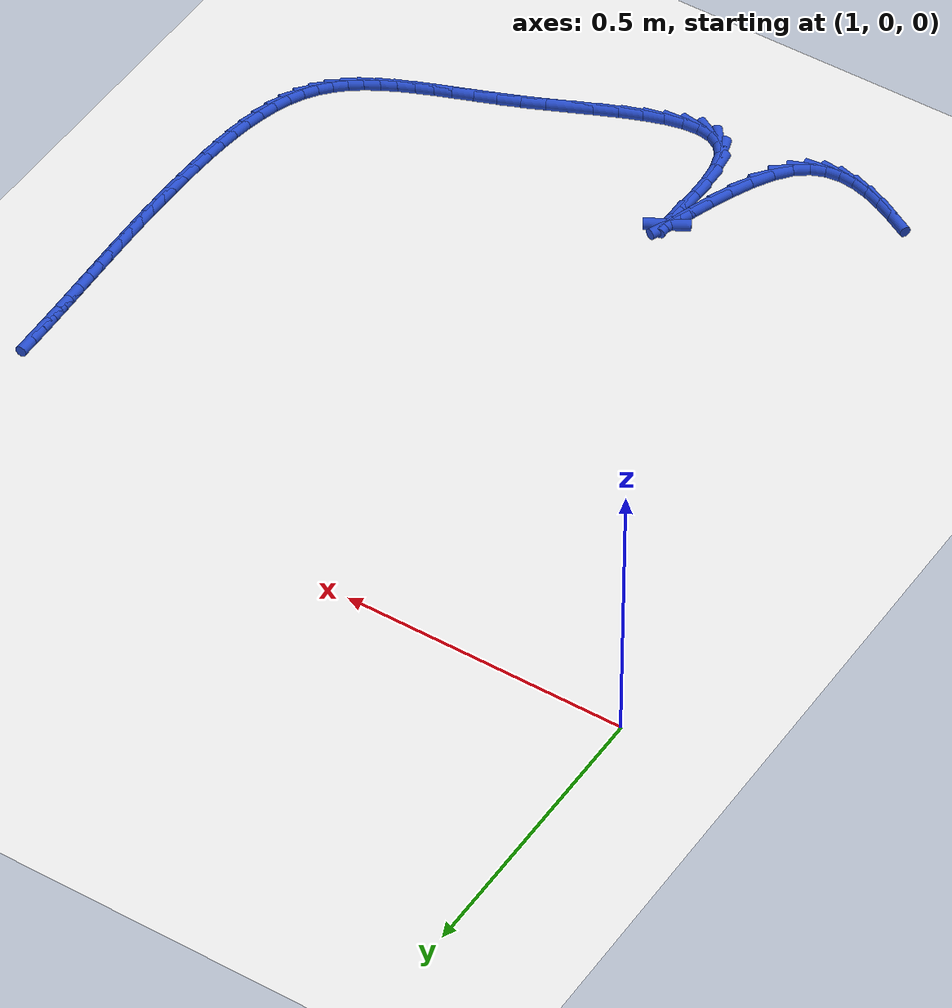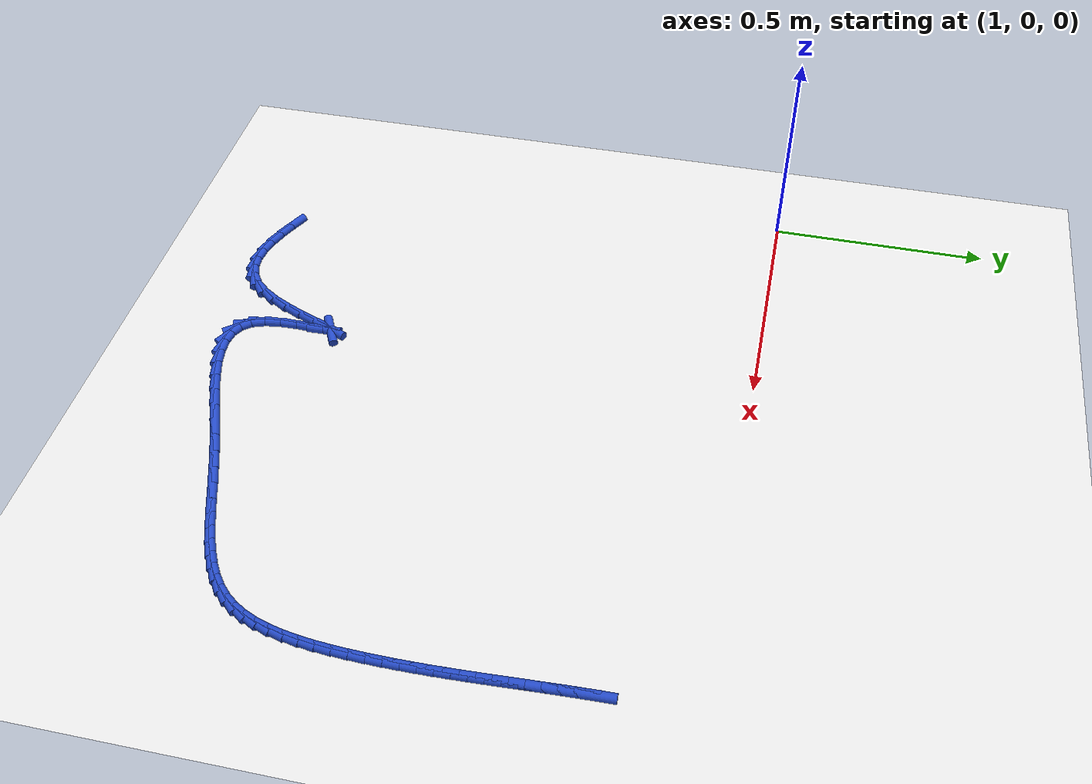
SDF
<sdf version="1.6">
 <world name="default">
  <model name="ground_plane">
   <static>1</static>
   <link name="link">
    <collision name="collision">
     <geometry><plane><normal>0 0 1</normal><size>100 100</size></plane></geometry>
     <surface><friction><ode><mu>100</mu><mu2>50</mu2></ode></friction></surface>
    </collision>
    <visual name="visual">
     <cast_shadows>0</cast_shadows>
     <geometry><plane><normal>0 0 1</normal><size>100 100</size></plane></geometry>
     <material>
      <script><uri>file://media/materials/scripts/gazebo.material</uri><name>Gazebo/WhiteGlow</name></script>
     </material>
    </visual>
   </link>
  </model>
  <model name="line">
   <link name="link_140">
    <pose>2.239795760640296 -0.19969387549302162 0.01 0 1.57 -1.5423619215341857</pose>
    <collision name="collision">
     <geometry><cylinder><radius>0.01</radius><length>0.08</length></cylinder></geometry>
    </collision>
    <visual name="visual">
     <material>
      <script><name>Gazebo/Blue</name><uri>file://media/materials/scripts/gazebo.material</uri></script>
     </material>
     <geometry><cylinder><radius>0.01</radius><length>0.08</length></cylinder></geometry>
    </visual>
   </link>
   <link name="link_141">
    <pose>2.240646824293116 -0.22961657887403833 0.01 0 1.57 -1.5354511075361896</pose>
    <collision name="collision">
     <geometry><cylinder><radius>0.01</radius><length>0.08</length></cylinder></geometry>
    </collision>
    <visual name="visual">
     <material>
      <script><name>Gazebo/Blue</name><uri>file://media/materials/scripts/gazebo.material</uri></script>
     </material>
     <geometry><cylinder><radius>0.01</radius><length>0.08</length></cylinder></geometry>
    </visual>
   </link>
   <link name="link_142">
    <pose>2.2417099219779604 -0.25968160510467597 0.01 0 1.57 -1.530387479086534</pose>
    <collision name="collision">
     <geometry><cylinder><radius>0.01</radius><length>0.08</length></cylinder></geometry>
    </collision>
    <visual name="visual">
     <material>
      <script><name>Gazebo/Blue</name><uri>file://media/materials/scripts/gazebo.material</uri></script>
     </material>
     <geometry><cylinder><radius>0.01</radius><length>0.08</length></cylinder></geometry>
    </visual>
   </link>
   <link name="link_143">
    <pose>2.2429318873362334 -0.2899051885417312 0.01 0 1.57 -1.527148485805397</pose>
    <collision name="collision">
     <geometry><cylinder><radius>0.01</radius><length>0.08</length></cylinder></geometry>
    </collision>
    <visual name="visual">
     <material>
      <script><name>Gazebo/Blue</name><uri>file://media/materials/scripts/gazebo.material</uri></script>
     </material>
     <geometry><cylinder><radius>0.01</radius><length>0.08</length></cylinder></geometry>
    </visual>
   </link>
   <link name="link_144">
    <pose>2.2442595540093384 -0.32030356354199685 0.01 0 1.57 -1.5257066516736706</pose>
    <collision name="collision">
     <geometry><cylinder><radius>0.01</radius><length>0.08</length></cylinder></geometry>
    </collision>
    <visual name="visual">
     <material>
      <script><name>Gazebo/Blue</name><uri>file://media/materials/scripts/gazebo.material</uri></script>
     </material>
     <geometry><cylinder><radius>0.01</radius><length>0.08</length></cylinder></geometry>
    </visual>
   </link>
   <link name="link_145">
    <pose>2.2456397556386793 -0.35089296446226953 0.01 0 1.57 -1.526030157581067</pose>
    <collision name="collision">
     <geometry><cylinder><radius>0.01</radius><length>0.08</length></cylinder></geometry>
    </collision>
    <visual name="visual">
     <material>
      <script><name>Gazebo/Blue</name><uri>file://media/materials/scripts/gazebo.material</uri></script>
     </material>
     <geometry><cylinder><radius>0.01</radius><length>0.08</length></cylinder></geometry>
    </visual>
   </link>
   <link name="link_146">
    <pose>2.2470193258656597 -0.38168962565934217 0.01 0 1.57 -1.5280832557869641</pose>
    <collision name="collision">
     <geometry><cylinder><radius>0.01</radius><length>0.08</length></cylinder></geometry>
    </collision>
    <visual name="visual">
     <material>
      <script><name>Gazebo/Blue</name><uri>file://media/materials/scripts/gazebo.material</uri></script>
     </material>
     <geometry><cylinder><radius>0.01</radius><length>0.08</length></cylinder></geometry>
    </visual>
   </link>
   <link name="link_147">
    <pose>2.2483450983316837 -0.4127097814900113 0.01 0 1.57 -1.5318265317386004</pose>
    <collision name="collision">
     <geometry><cylinder><radius>0.01</radius><length>0.08</length></cylinder></geometry>
    </collision>
    <visual name="visual">
     <material>
      <script><name>Gazebo/Blue</name><uri>file://media/materials/scripts/gazebo.material</uri></script>
     </material>
     <geometry><cylinder><radius>0.01</radius><length>0.08</length></cylinder></geometry>
    </visual>
   </link>
   <link name="link_148">
    <pose>2.249563906678155 -0.4439696663110697 0.01 0 1.57 -1.5372170329112946</pose>
    <collision name="collision">
     <geometry><cylinder><radius>0.01</radius><length>0.08</length></cylinder></geometry>
    </collision>
    <visual name="visual">
     <material>
      <script><name>Gazebo/Blue</name><uri>file://media/materials/scripts/gazebo.material</uri></script>
     </material>
     <geometry><cylinder><radius>0.01</radius><length>0.08</length></cylinder></geometry>
    </visual>
   </link>
   <link name="link_149">
    <pose>2.250622584546476 -0.4754855144793141 0.01 0 1.57 -1.5442082874131682</pose>
    <collision name="collision">
     <geometry><cylinder><radius>0.01</radius><length>0.08</length></cylinder></geometry>
    </collision>
    <visual name="visual">
     <material>
      <script><name>Gazebo/Blue</name><uri>file://media/materials/scripts/gazebo.material</uri></script>
     </material>
     <geometry><cylinder><radius>0.01</radius><length>0.08</length></cylinder></geometry>
    </visual>
   </link>
   <link name="link_150">
    <pose>2.2514679655780516 -0.5072735603515374 0.01 0 1.57 -1.5527502373096762</pose>
    <collision name="collision">
     <geometry><cylinder><radius>0.01</radius><length>0.08</length></cylinder></geometry>
    </collision>
    <visual name="visual">
     <material>
      <script><name>Gazebo/Blue</name><uri>file://media/materials/scripts/gazebo.material</uri></script>
     </material>
     <geometry><cylinder><radius>0.01</radius><length>0.08</length></cylinder></geometry>
    </visual>
   </link>
   <link name="link_151">
    <pose>2.252046883414286 -0.5393500382845353 0.01 0 1.57 -1.5627891131522318</pose>
    <collision name="collision">
     <geometry><cylinder><radius>0.01</radius><length>0.08</length></cylinder></geometry>
    </collision>
    <visual name="visual">
     <material>
      <script><name>Gazebo/Blue</name><uri>file://media/materials/scripts/gazebo.material</uri></script>
     </material>
     <geometry><cylinder><radius>0.01</radius><length>0.08</length></cylinder></geometry>
    </visual>
   </link>
   <link name="link_152">
    <pose>2.252306171696582 -0.5717311826351033 0.01 0 1.57 1.5673253764620805</pose>
    <collision name="collision">
     <geometry><cylinder><radius>0.01</radius><length>0.08</length></cylinder></geometry>
    </collision>
    <visual name="visual">
     <material>
      <script><name>Gazebo/Blue</name><uri>file://media/materials/scripts/gazebo.material</uri></script>
     </material>
     <geometry><cylinder><radius>0.01</radius><length>0.08</length></cylinder></geometry>
    </visual>
   </link>
   <link name="link_153">
    <pose>2.252192664066344 -0.6044332277600345 0.01 0 1.57 1.554469591015662</pose>
    <collision name="collision">
     <geometry><cylinder><radius>0.01</radius><length>0.08</length></cylinder></geometry>
    </collision>
    <visual name="visual">
     <material>
      <script><name>Gazebo/Blue</name><uri>file://media/materials/scripts/gazebo.material</uri></script>
     </material>
     <geometry><cylinder><radius>0.01</radius><length>0.08</length></cylinder></geometry>
    </visual>
   </link>
   <link name="link_154">
    <pose>2.251653194164976 -0.6374724080161254 0.01 0 1.57 1.5402803561742806</pose>
    <collision name="collision">
     <geometry><cylinder><radius>0.01</radius><length>0.08</length></cylinder></geometry>
    </collision>
    <visual name="visual">
     <material>
      <script><name>Gazebo/Blue</name><uri>file://media/materials/scripts/gazebo.material</uri></script>
     </material>
     <geometry><cylinder><radius>0.01</radius><length>0.08</length></cylinder></geometry>
    </visual>
   </link>
   <link name="link_155">
    <pose>2.2506339152860377 -0.6708635289962399 0.01 0 1.57 1.522808725371008</pose>
    <collision name="collision">
     <geometry><cylinder><radius>0.01</radius><length>0.08</length></cylinder></geometry>
    </collision>
    <visual name="visual">
     <material>
      <script><name>Gazebo/Blue</name><uri>file://media/materials/scripts/gazebo.material</uri></script>
     </material>
     <geometry><cylinder><radius>0.01</radius><length>0.08</length></cylinder></geometry>
    </visual>
   </link>
   <link name="link_156">
    <pose>2.2490189659911715 -0.7044911623062867 0.01 0 1.57 1.4982034645416196</pose>
    <collision name="collision">
     <geometry><cylinder><radius>0.01</radius><length>0.08</length></cylinder></geometry>
    </collision>
    <visual name="visual">
     <material>
      <script><name>Gazebo/Blue</name><uri>file://media/materials/scripts/gazebo.material</uri></script>
     </material>
     <geometry><cylinder><radius>0.01</radius><length>0.08</length></cylinder></geometry>
    </visual>
   </link>
   <link name="link_157">
    <pose>2.246581661985147 -0.7380071461024055 0.01 0 1.57 1.4652975162314539</pose>
    <collision name="collision">
     <geometry><cylinder><radius>0.01</radius><length>0.08</length></cylinder></geometry>
    </collision>
    <visual name="visual">
     <material>
      <script><name>Gazebo/Blue</name><uri>file://media/materials/scripts/gazebo.material</uri></script>
     </material>
     <geometry><cylinder><radius>0.01</radius><length>0.08</length></cylinder></geometry>
    </visual>
   </link>
   <link name="link_158">
    <pose>2.2430838332264447 -0.7710391979086514 0.01 0 1.57 1.422813865226346</pose>
    <collision name="collision">
     <geometry><cylinder><radius>0.01</radius><length>0.08</length></cylinder></geometry>
    </collision>
    <visual name="visual">
     <material>
      <script><name>Gazebo/Blue</name><uri>file://media/materials/scripts/gazebo.material</uri></script>
     </material>
     <geometry><cylinder><radius>0.01</radius><length>0.08</length></cylinder></geometry>
    </visual>
   </link>
   <link name="link_159">
    <pose>2.2382873096735434 -0.8032150352490752 0.01 0 1.57 1.368933166814434</pose>
    <collision name="collision">
     <geometry><cylinder><radius>0.01</radius><length>0.08</length></cylinder></geometry>
    </collision>
    <visual name="visual">
     <material>
      <script><name>Gazebo/Blue</name><uri>file://media/materials/scripts/gazebo.material</uri></script>
     </material>
     <geometry><cylinder><radius>0.01</radius><length>0.08</length></cylinder></geometry>
    </visual>
   </link>
   <link name="link_160">
    <pose>2.231953921284923 -0.8341623756477312 0.01 0 1.57 1.30122291668674</pose>
    <collision name="collision">
     <geometry><cylinder><radius>0.01</radius><length>0.08</length></cylinder></geometry>
    </collision>
    <visual name="visual">
     <material>
      <script><name>Gazebo/Blue</name><uri>file://media/materials/scripts/gazebo.material</uri></script>
     </material>
     <geometry><cylinder><radius>0.01</radius><length>0.08</length></cylinder></geometry>
    </visual>
   </link>
   <link name="link_161">
    <pose>2.2238454980190645 -0.8635089366286735 0.01 0 1.57 1.2166274228957739</pose>
    <collision name="collision">
     <geometry><cylinder><radius>0.01</radius><length>0.08</length></cylinder></geometry>
    </collision>
    <visual name="visual">
     <material>
      <script><name>Gazebo/Blue</name><uri>file://media/materials/scripts/gazebo.material</uri></script>
     </material>
     <geometry><cylinder><radius>0.01</radius><length>0.08</length></cylinder></geometry>
    </visual>
   </link>
   <link name="link_162">
    <pose>2.213723869834446 -0.8908824357159532 0.01 0 1.57 1.1116681734024318</pose>
    <collision name="collision">
     <geometry><cylinder><radius>0.01</radius><length>0.08</length></cylinder></geometry>
    </collision>
    <visual name="visual">
     <material>
      <script><name>Gazebo/Blue</name><uri>file://media/materials/scripts/gazebo.material</uri></script>
     </material>
     <geometry><cylinder><radius>0.01</radius><length>0.08</length></cylinder></geometry>
    </visual>
   </link>
   <link name="link_163">
    <pose>2.2013508666895474 -0.9159105904336245 0.01 0 1.57 0.9852864245787318</pose>
    <collision name="collision">
     <geometry><cylinder><radius>0.01</radius><length>0.08</length></cylinder></geometry>
    </collision>
    <visual name="visual">
     <material>
      <script><name>Gazebo/Blue</name><uri>file://media/materials/scripts/gazebo.material</uri></script>
     </material>
     <geometry><cylinder><radius>0.01</radius><length>0.08</length></cylinder></geometry>
    </visual>
   </link>
   <link name="link_164">
    <pose>2.18651680349354 -0.9382823113944915 0.01 0 1.57 0.8546218907017342</pose>
    <collision name="collision">
     <geometry><cylinder><radius>0.01</radius><length>0.08</length></cylinder></geometry>
    </collision>
    <visual name="visual">
     <material>
      <script><name>Gazebo/Blue</name><uri>file://media/materials/scripts/gazebo.material</uri></script>
     </material>
     <geometry><cylinder><radius>0.01</radius><length>0.08</length></cylinder></geometry>
    </visual>
   </link>
   <link name="link_165">
    <pose>2.1692269689173918 -0.958148328809635 0.01 0 1.57 0.7340474057702667</pose>
    <collision name="collision">
     <geometry><cylinder><radius>0.01</radius><length>0.08</length></cylinder></geometry>
    </collision>
    <visual name="visual">
     <material>
      <script><name>Gazebo/Blue</name><uri>file://media/materials/scripts/gazebo.material</uri></script>
     </material>
     <geometry><cylinder><radius>0.01</radius><length>0.08</length></cylinder></geometry>
    </visual>
   </link>
   <link name="link_166">
    <pose>2.149584773657195 -0.975870164541377 0.01 0 1.57 0.6293872244709401</pose>
    <collision name="collision">
     <geometry><cylinder><radius>0.01</radius><length>0.08</length></cylinder></geometry>
    </collision>
    <visual name="visual">
     <material>
      <script><name>Gazebo/Blue</name><uri>file://media/materials/scripts/gazebo.material</uri></script>
     </material>
     <geometry><cylinder><radius>0.01</radius><length>0.08</length></cylinder></geometry>
    </visual>
   </link>
   <link name="link_167">
    <pose>2.127694130474767 -0.9918104190199155 0.01 0 1.57 0.5434782065493179</pose>
    <collision name="collision">
     <geometry><cylinder><radius>0.01</radius><length>0.08</length></cylinder></geometry>
    </collision>
    <visual name="visual">
     <material>
      <script><name>Gazebo/Blue</name><uri>file://media/materials/scripts/gazebo.material</uri></script>
     </material>
     <geometry><cylinder><radius>0.01</radius><length>0.08</length></cylinder></geometry>
    </visual>
   </link>
   <link name="link_168">
    <pose>2.103658952131928 -1.0063316926754458 0.01 0 1.57 0.4766616777151946</pose>
    <collision name="collision">
     <geometry><cylinder><radius>0.01</radius><length>0.08</length></cylinder></geometry>
    </collision>
    <visual name="visual">
     <material>
      <script><name>Gazebo/Blue</name><uri>file://media/materials/scripts/gazebo.material</uri></script>
     </material>
     <geometry><cylinder><radius>0.01</radius><length>0.08</length></cylinder></geometry>
    </visual>
   </link>
   <link name="link_169">
    <pose>2.077583151390496 -1.0197965859381661 0.01 0 1.57 0.42775572411039897</pose>
    <collision name="collision">
     <geometry><cylinder><radius>0.01</radius><length>0.08</length></cylinder></geometry>
    </collision>
    <visual name="visual">
     <material>
      <script><name>Gazebo/Blue</name><uri>file://media/materials/scripts/gazebo.material</uri></script>
     </material>
     <geometry><cylinder><radius>0.01</radius><length>0.08</length></cylinder></geometry>
    </visual>
   </link>
   <link name="link_170">
    <pose>2.049570641012293 -1.0325676992382726 0.01 0 1.57 0.3949164195182842</pose>
    <collision name="collision">
     <geometry><cylinder><radius>0.01</radius><length>0.08</length></cylinder></geometry>
    </collision>
    <visual name="visual">
     <material>
      <script><name>Gazebo/Blue</name><uri>file://media/materials/scripts/gazebo.material</uri></script>
     </material>
     <geometry><cylinder><radius>0.01</radius><length>0.08</length></cylinder></geometry>
    </visual>
   </link>
   <link name="link_171">
    <pose>2.019725333759135 -1.0450076330059621 0.01 0 1.57 0.3761762606921208</pose>
    <collision name="collision">
     <geometry><cylinder><radius>0.01</radius><length>0.08</length></cylinder></geometry>
    </collision>
    <visual name="visual">
     <material>
      <script><name>Gazebo/Blue</name><uri>file://media/materials/scripts/gazebo.material</uri></script>
     </material>
     <geometry><cylinder><radius>0.01</radius><length>0.08</length></cylinder></geometry>
    </visual>
   </link>
   <link name="link_172">
    <pose>1.9881511423928424 -1.0574789876714321 0.01 0 1.57 0.36970263237578155</pose>
    <collision name="collision">
     <geometry><cylinder><radius>0.01</radius><length>0.08</length></cylinder></geometry>
    </collision>
    <visual name="visual">
     <material>
      <script><name>Gazebo/Blue</name><uri>file://media/materials/scripts/gazebo.material</uri></script>
     </material>
     <geometry><cylinder><radius>0.01</radius><length>0.08</length></cylinder></geometry>
    </visual>
   </link>
   <link name="link_173">
    <pose>1.954951979675236 -1.0703443636648786 0.01 0 1.57 0.3738821956783288</pose>
    <collision name="collision">
     <geometry><cylinder><radius>0.01</radius><length>0.08</length></cylinder></geometry>
    </collision>
    <visual name="visual">
     <material>
      <script><name>Gazebo/Blue</name><uri>file://media/materials/scripts/gazebo.material</uri></script>
     </material>
     <geometry><cylinder><radius>0.01</radius><length>0.08</length></cylinder></geometry>
    </visual>
   </link>
   <link name="link_174">
    <pose>1.9202317583681319 -1.083966361416499 0.01 0 1.57 0.3873168078791933</pose>
    <collision name="collision">
     <geometry><cylinder><radius>0.01</radius><length>0.08</length></cylinder></geometry>
    </collision>
    <visual name="visual">
     <material>
      <script><name>Gazebo/Blue</name><uri>file://media/materials/scripts/gazebo.material</uri></script>
     </material>
     <geometry><cylinder><radius>0.01</radius><length>0.08</length></cylinder></geometry>
    </visual>
   </link>
   <link name="link_175">
    <pose>1.8840943912333514 -1.0987075813564893 0.01 0 1.57 0.40865133836424256</pose>
    <collision name="collision">
     <geometry><cylinder><radius>0.01</radius><length>0.08</length></cylinder></geometry>
    </collision>
    <visual name="visual">
     <material>
      <script><name>Gazebo/Blue</name><uri>file://media/materials/scripts/gazebo.material</uri></script>
     </material>
     <geometry><cylinder><radius>0.01</radius><length>0.08</length></cylinder></geometry>
    </visual>
   </link>
   <link name="link_176">
    <pose>1.8466466921307707 -1.1149235103173538 0.01 0 1.57 0.4276587623007526</pose>
    <collision name="collision">
     <geometry><cylinder><radius>0.01</radius><length>0.08</length></cylinder></geometry>
    </collision>
    <visual name="visual">
     <material>
      <script><name>Gazebo/Blue</name><uri>file://media/materials/scripts/gazebo.material</uri></script>
     </material>
     <geometry><cylinder><radius>0.01</radius><length>0.08</length></cylinder></geometry>
    </visual>
   </link>
   <link name="link_177">
    <pose>1.8082105144797003 -1.1324423503298253 0.01 0 1.57 0.4300080757514925</pose>
    <collision name="collision">
     <geometry><cylinder><radius>0.01</radius><length>0.08</length></cylinder></geometry>
    </collision>
    <visual name="visual">
     <material>
      <script><name>Gazebo/Blue</name><uri>file://media/materials/scripts/gazebo.material</uri></script>
     </material>
     <geometry><cylinder><radius>0.01</radius><length>0.08</length></cylinder></geometry>
    </visual>
   </link>
   <link name="link_178">
    <pose>1.7694669980877011 -1.1502113201650646 0.01 0 1.57 0.4148329444589586</pose>
    <collision name="collision">
     <geometry><cylinder><radius>0.01</radius><length>0.08</length></cylinder></geometry>
    </collision>
    <visual name="visual">
     <material>
      <script><name>Gazebo/Blue</name><uri>file://media/materials/scripts/gazebo.material</uri></script>
     </material>
     <geometry><cylinder><radius>0.01</radius><length>0.08</length></cylinder></geometry>
    </visual>
   </link>
   <link name="link_179">
    <pose>1.7311314379414051 -1.1670938888559383 0.01 0 1.57 0.3799204357024596</pose>
    <collision name="collision">
     <geometry><cylinder><radius>0.01</radius><length>0.08</length></cylinder></geometry>
    </collision>
    <visual name="visual">
     <material>
      <script><name>Gazebo/Blue</name><uri>file://media/materials/scripts/gazebo.material</uri></script>
     </material>
     <geometry><cylinder><radius>0.01</radius><length>0.08</length></cylinder></geometry>
    </visual>
   </link>
   <link name="link_180">
    <pose>1.6939191290274422 -1.1819535254353155 0.01 0 1.57 0.3194314378348693</pose>
    <collision name="collision">
     <geometry><cylinder><radius>0.01</radius><length>0.08</length></cylinder></geometry>
    </collision>
    <visual name="visual">
     <material>
      <script><name>Gazebo/Blue</name><uri>file://media/materials/scripts/gazebo.material</uri></script>
     </material>
     <geometry><cylinder><radius>0.01</radius><length>0.08</length></cylinder></geometry>
    </visual>
   </link>
   <link name="link_181">
    <pose>1.6585453663324445 -1.1936536989360629 0.01 0 1.57 0.22188560736046836</pose>
    <collision name="collision">
     <geometry><cylinder><radius>0.01</radius><length>0.08</length></cylinder></geometry>
    </collision>
    <visual name="visual">
     <material>
      <script><name>Gazebo/Blue</name><uri>file://media/materials/scripts/gazebo.material</uri></script>
     </material>
     <geometry><cylinder><radius>0.01</radius><length>0.08</length></cylinder></geometry>
    </visual>
   </link>
   <link name="link_182">
    <pose>1.6257254448430434 -1.2010578783910504 0.01 0 1.57 0.06662213846049571</pose>
    <collision name="collision">
     <geometry><cylinder><radius>0.01</radius><length>0.08</length></cylinder></geometry>
    </collision>
    <visual name="visual">
     <material>
      <script><name>Gazebo/Blue</name><uri>file://media/materials/scripts/gazebo.material</uri></script>
     </material>
     <geometry><cylinder><radius>0.01</radius><length>0.08</length></cylinder></geometry>
    </visual>
   </link>
   <link name="link_183">
    <pose>1.5961746595458666 -1.2030295328331437 0.01 0 1.57 -0.17792084522249</pose>
    <collision name="collision">
     <geometry><cylinder><radius>0.01</radius><length>0.08</length></cylinder></geometry>
    </collision>
    <visual name="visual">
     <material>
      <script><name>Gazebo/Blue</name><uri>file://media/materials/scripts/gazebo.material</uri></script>
     </material>
     <geometry><cylinder><radius>0.01</radius><length>0.08</length></cylinder></geometry>
    </visual>
   </link>
   <link name="link_184">
    <pose>1.570608305427549 -1.1984321312952126 0.01 0 1.57 -0.532738220716214</pose>
    <collision name="collision">
     <geometry><cylinder><radius>0.01</radius><length>0.08</length></cylinder></geometry>
    </collision>
    <visual name="visual">
     <material>
      <script><name>Gazebo/Blue</name><uri>file://media/materials/scripts/gazebo.material</uri></script>
     </material>
     <geometry><cylinder><radius>0.01</radius><length>0.08</length></cylinder></geometry>
    </visual>
   </link>
   <link name="link_185">
    <pose>1.5497416774747192 -1.1861291428101242 0.01 0 1.57 -0.9397350156977179</pose>
    <collision name="collision">
     <geometry><cylinder><radius>0.01</radius><length>0.08</length></cylinder></geometry>
    </collision>
    <visual name="visual">
     <material>
      <script><name>Gazebo/Blue</name><uri>file://media/materials/scripts/gazebo.material</uri></script>
     </material>
     <geometry><cylinder><radius>0.01</radius><length>0.08</length></cylinder></geometry>
    </visual>
   </link>
   <link name="link_186">
    <pose>1.5342900706740095 -1.1649840364107469 0.01 0 1.57 -1.2728138901836328</pose>
    <collision name="collision">
     <geometry><cylinder><radius>0.01</radius><length>0.08</length></cylinder></geometry>
    </collision>
    <visual name="visual">
     <material>
      <script><name>Gazebo/Blue</name><uri>file://media/materials/scripts/gazebo.material</uri></script>
     </material>
     <geometry><cylinder><radius>0.01</radius><length>0.08</length></cylinder></geometry>
    </visual>
   </link>
   <link name="link_187">
    <pose>1.52483575352597 -1.134200949811283 0.01 0 1.57 -1.4574909462315309</pose>
    <collision name="collision">
     <geometry><cylinder><radius>0.01</radius><length>0.08</length></cylinder></geometry>
    </collision>
    <visual name="visual">
     <material>
      <script><name>Gazebo/Blue</name><uri>file://media/materials/scripts/gazebo.material</uri></script>
     </material>
     <geometry><cylinder><radius>0.01</radius><length>0.08</length></cylinder></geometry>
    </visual>
   </link>
   <link name="link_188">
    <pose>1.5205552248189265 -1.0965840685678245 0.01 0 1.57 -1.5511814388599983</pose>
    <collision name="collision">
     <geometry><cylinder><radius>0.01</radius><length>0.08</length></cylinder></geometry>
    </collision>
    <visual name="visual">
     <material>
      <script><name>Gazebo/Blue</name><uri>file://media/materials/scripts/gazebo.material</uri></script>
     </material>
     <geometry><cylinder><radius>0.01</radius><length>0.08</length></cylinder></geometry>
    </visual>
   </link>
   <link name="link_189">
    <pose>1.519780646892532 -1.0570998467669501 0.01 0 1.57 1.5418673120719937</pose>
    <collision name="collision">
     <geometry><cylinder><radius>0.01</radius><length>0.08</length></cylinder></geometry>
    </collision>
    <visual name="visual">
     <material>
      <script><name>Gazebo/Blue</name><uri>file://media/materials/scripts/gazebo.material</uri></script>
     </material>
     <geometry><cylinder><radius>0.01</radius><length>0.08</length></cylinder></geometry>
    </visual>
   </link>
   <link name="link_190">
    <pose>1.5208326730778996 -1.020744212014983 0.01 0 1.57 1.5283409447852518</pose>
    <collision name="collision">
     <geometry><cylinder><radius>0.01</radius><length>0.08</length></cylinder></geometry>
    </collision>
    <visual name="visual">
     <material>
      <script><name>Gazebo/Blue</name><uri>file://media/materials/scripts/gazebo.material</uri></script>
     </material>
     <geometry><cylinder><radius>0.01</radius><length>0.08</length></cylinder></geometry>
    </visual>
   </link>
   <link name="link_191">
    <pose>1.5220319567061407 -0.9925130919182403 0.01 0 1.57 -1.5487753556238382</pose>
    <collision name="collision">
     <geometry><cylinder><radius>0.01</radius><length>0.08</length></cylinder></geometry>
    </collision>
    <visual name="visual">
     <material>
      <script><name>Gazebo/Blue</name><uri>file://media/materials/scripts/gazebo.material</uri></script>
     </material>
     <geometry><cylinder><radius>0.01</radius><length>0.08</length></cylinder></geometry>
    </visual>
   </link>
   <link name="link_192">
    <pose>1.5216991511083688 -0.977402414083044 0.01 0 1.57 0.5119243737176158</pose>
    <collision name="collision">
     <geometry><cylinder><radius>0.01</radius><length>0.08</length></cylinder></geometry>
    </collision>
    <visual name="visual">
     <material>
      <script><name>Gazebo/Blue</name><uri>file://media/materials/scripts/gazebo.material</uri></script>
     </material>
     <geometry><cylinder><radius>0.01</radius><length>0.08</length></cylinder></geometry>
    </visual>
   </link>
   <link name="link_193">
    <pose>1.518398418288779 -0.9792570559722295 0.01 0 1.57 1.204075365429283</pose>
    <collision name="collision">
     <geometry><cylinder><radius>0.01</radius><length>0.08</length></cylinder></geometry>
    </collision>
    <visual name="visual">
     <material>
      <script><name>Gazebo/Blue</name><uri>file://media/materials/scripts/gazebo.material</uri></script>
     </material>
     <geometry><cylinder><radius>0.01</radius><length>0.08</length></cylinder></geometry>
    </visual>
   </link>
   <link name="link_194">
    <pose>1.5119212037104974 -0.9961206035233335 0.01 0 1.57 1.2454520135938278</pose>
    <collision name="collision">
     <geometry><cylinder><radius>0.01</radius><length>0.08</length></cylinder></geometry>
    </collision>
    <visual name="visual">
     <material>
      <script><name>Gazebo/Blue</name><uri>file://media/materials/scripts/gazebo.material</uri></script>
     </material>
     <geometry><cylinder><radius>0.01</radius><length>0.08</length></cylinder></geometry>
    </visual>
   </link>
   <link name="link_195">
    <pose>1.5024447323889212 -1.0242130870552244 0.01 0 1.57 1.2376579961572698</pose>
    <collision name="collision">
     <geometry><cylinder><radius>0.01</radius><length>0.08</length></cylinder></geometry>
    </collision>
    <visual name="visual">
     <material>
      <script><name>Gazebo/Blue</name><uri>file://media/materials/scripts/gazebo.material</uri></script>
     </material>
     <geometry><cylinder><radius>0.01</radius><length>0.08</length></cylinder></geometry>
    </visual>
   </link>
   <link name="link_196">
    <pose>1.4901463693853234 -1.0597538748987465 0.01 0 1.57 1.2066763210855478</pose>
    <collision name="collision">
     <geometry><cylinder><radius>0.01</radius><length>0.08</length></cylinder></geometry>
    </collision>
    <visual name="visual">
     <material>
      <script><name>Gazebo/Blue</name><uri>file://media/materials/scripts/gazebo.material</uri></script>
     </material>
     <geometry><cylinder><radius>0.01</radius><length>0.08</length></cylinder></geometry>
    </visual>
   </link>
   <link name="link_197">
    <pose>1.4752034797609785 -1.098962335384739 0.01 0 1.57 1.1518401942060728</pose>
    <collision name="collision">
     <geometry><cylinder><radius>0.01</radius><length>0.08</length></cylinder></geometry>
    </collision>
    <visual name="visual">
     <material>
      <script><name>Gazebo/Blue</name><uri>file://media/materials/scripts/gazebo.material</uri></script>
     </material>
     <geometry><cylinder><radius>0.01</radius><length>0.08</length></cylinder></geometry>
    </visual>
   </link>
   <link name="link_198">
    <pose>1.4577934285771594 -1.1380578368440464 0.01 0 1.57 1.0605939934379294</pose>
    <collision name="collision">
     <geometry><cylinder><radius>0.01</radius><length>0.08</length></cylinder></geometry>
    </collision>
    <visual name="visual">
     <material>
      <script><name>Gazebo/Blue</name><uri>file://media/materials/scripts/gazebo.material</uri></script>
     </material>
     <geometry><cylinder><radius>0.01</radius><length>0.08</length></cylinder></geometry>
    </visual>
   </link>
   <link name="link_199">
    <pose>1.4380935808951407 -1.173259747607508 0.01 0 1.57 0.9021985973528001</pose>
    <collision name="collision">
     <geometry><cylinder><radius>0.01</radius><length>0.08</length></cylinder></geometry>
    </collision>
    <visual name="visual">
     <material>
      <script><name>Gazebo/Blue</name><uri>file://media/materials/scripts/gazebo.material</uri></script>
     </material>
     <geometry><cylinder><radius>0.01</radius><length>0.08</length></cylinder></geometry>
    </visual>
   </link>
   <link name="link_200">
    <pose>1.4162813480690566 -1.2008710679506098 0.01 0 1.57 0.6626297834606955</pose>
    <collision name="collision">
     <geometry><cylinder><radius>0.01</radius><length>0.08</length></cylinder></geometry>
    </collision>
    <visual name="visual">
     <material>
      <script><name>Gazebo/Blue</name><uri>file://media/materials/scripts/gazebo.material</uri></script>
     </material>
     <geometry><cylinder><radius>0.01</radius><length>0.08</length></cylinder></geometry>
    </visual>
   </link>
   <link name="link_201">
    <pose>1.39253536249321 -1.2194007098217778 0.01 0 1.57 0.3849669536721384</pose>
    <collision name="collision">
     <geometry><cylinder><radius>0.01</radius><length>0.08</length></cylinder></geometry>
    </collision>
    <visual name="visual">
     <material>
      <script><name>Gazebo/Blue</name><uri>file://media/materials/scripts/gazebo.material</uri></script>
     </material>
     <geometry><cylinder><radius>0.01</radius><length>0.08</length></cylinder></geometry>
    </visual>
   </link>
   <link name="link_202">
    <pose>1.3670355713197873 -1.2297328057806014 0.01 0 1.57 0.11532709019379786</pose>
    <collision name="collision">
     <geometry><cylinder><radius>0.01</radius><length>0.08</length></cylinder></geometry>
    </collision>
    <visual name="visual">
     <material>
      <script><name>Gazebo/Blue</name><uri>file://media/materials/scripts/gazebo.material</uri></script>
     </material>
     <geometry><cylinder><radius>0.01</radius><length>0.08</length></cylinder></geometry>
    </visual>
   </link>
   <link name="link_203">
    <pose>1.3399619867695216 -1.2328690401779163 0.01 0 1.57 -0.10700891159282544</pose>
    <collision name="collision">
     <geometry><cylinder><radius>0.01</radius><length>0.08</length></cylinder></geometry>
    </collision>
    <visual name="visual">
     <material>
      <script><name>Gazebo/Blue</name><uri>file://media/materials/scripts/gazebo.material</uri></script>
     </material>
     <geometry><cylinder><radius>0.01</radius><length>0.08</length></cylinder></geometry>
    </visual>
   </link>
   <link name="link_204">
    <pose>1.3114946210631433 -1.2298110973645593 0.01 0 1.57 -0.27112437713327286</pose>
    <collision name="collision">
     <geometry><cylinder><radius>0.01</radius><length>0.08</length></cylinder></geometry>
    </collision>
    <visual name="visual">
     <material>
      <script><name>Gazebo/Blue</name><uri>file://media/materials/scripts/gazebo.material</uri></script>
     </material>
     <geometry><cylinder><radius>0.01</radius><length>0.08</length></cylinder></geometry>
    </visual>
   </link>
   <link name="link_205">
    <pose>1.2818134864213833 -1.2215606616913655 0.01 0 1.57 -0.3848571929256008</pose>
    <collision name="collision">
     <geometry><cylinder><radius>0.01</radius><length>0.08</length></cylinder></geometry>
    </collision>
    <visual name="visual">
     <material>
      <script><name>Gazebo/Blue</name><uri>file://media/materials/scripts/gazebo.material</uri></script>
     </material>
     <geometry><cylinder><radius>0.01</radius><length>0.08</length></cylinder></geometry>
    </visual>
   </link>
   <link name="link_206">
    <pose>1.2510985950649745 -1.2091194175091715 0.01 0 1.57 -0.45973867379291206</pose>
    <collision name="collision">
     <geometry><cylinder><radius>0.01</radius><length>0.08</length></cylinder></geometry>
    </collision>
    <visual name="visual">
     <material>
      <script><name>Gazebo/Blue</name><uri>file://media/materials/scripts/gazebo.material</uri></script>
     </material>
     <geometry><cylinder><radius>0.01</radius><length>0.08</length></cylinder></geometry>
    </visual>
   </link>
   <link name="link_207">
    <pose>1.219529959214646 -1.1934890491688126 0.01 0 1.57 -0.5048532304109868</pose>
    <collision name="collision">
     <geometry><cylinder><radius>0.01</radius><length>0.08</length></cylinder></geometry>
    </collision>
    <visual name="visual">
     <material>
      <script><name>Gazebo/Blue</name><uri>file://media/materials/scripts/gazebo.material</uri></script>
     </material>
     <geometry><cylinder><radius>0.01</radius><length>0.08</length></cylinder></geometry>
    </visual>
   </link>
  </model>
 </world>
</sdf>
